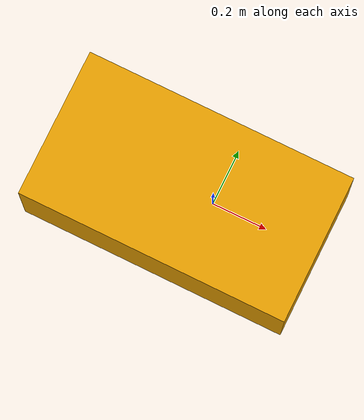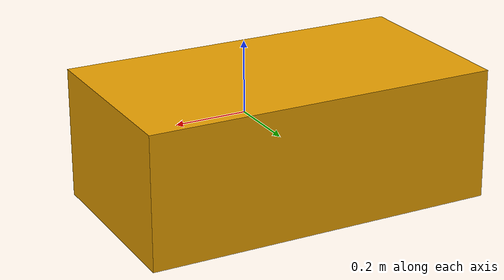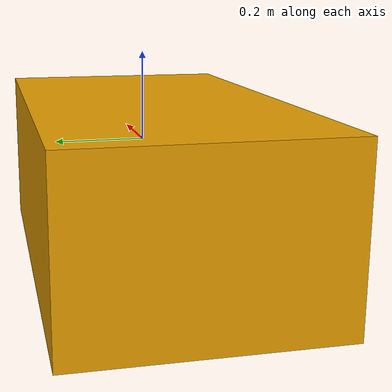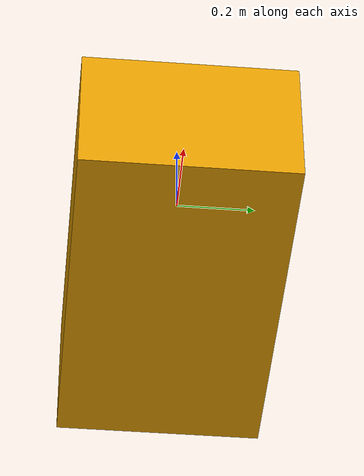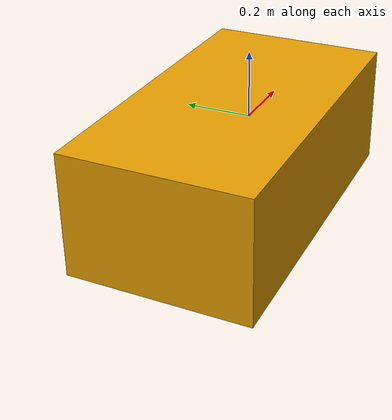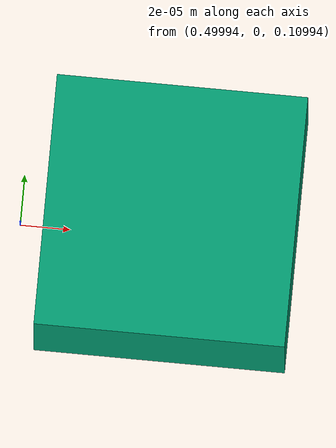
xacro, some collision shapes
<?xml version="1.0"?>
<robot name="kingfisher_sim" xmlns:xacro="http://www.ros.org/wiki/xacro">
    <xacro:arg name="namespace" default="ns" />
    <xacro:arg name="simulate_cameras" default="true" />

    <xacro:property name="ns" value="$(arg namespace)" />

    <xacro:include filename="$(find tauv_sim_gazebo_plugins)/urdf/utils.xacro"/>
    <xacro:include filename="$(find tauv_sim_gazebo_plugins)/urdf/thruster_plugin.xacro"/>
    <xacro:include filename="$(find tauv_sim_gazebo_plugins)/urdf/navigation_state_plugin.xacro"/>

    <link name="${ns}/base_link">
        <inertial>
            <mass value="28"/>
            <origin xyz="0 0 0" rpy="0 0 0"/>
            <inertia
                    ixx="7"
                    ixy="0"
                    ixz="0"
                    iyy="7"
                    iyz="0"
                    izz="4"
            />
        </inertial>

        <visual>
            <origin xyz="-0.1 0 0" rpy="0 0 3.141592"/>
            <geometry>
                <mesh filename="$(find kingfisher_sim_description)/meshes/KingfisherCoarseNoInsides.obj" scale="1 1 1" />
            </geometry>
        </visual>

        <collision>
            <origin xyz="-0.1 0 -0.08" rpy="0 0 0"/>
            <geometry>
                <box size="0.986 0.538 0.366"/>
            </geometry>
        </collision>
    </link>

    <gazebo reference="${ns}/base_link">
        <selfCollide>false</selfCollide>
    </gazebo>

    <gazebo>
        <plugin name="${ns}_uuv_plugin" filename="libuuv_underwater_object_ros_plugin.so">
            <fluid_density>1028.0</fluid_density>
            <flow_velocity_topic>hydrodynamics/current_velocity</flow_velocity_topic>
            <debug>true</debug>

            <link name="${ns}/base_link">
                <neutrally_buoyant>0</neutrally_buoyant>

                <volume>0.03</volume>

                <box>
                    <length>0.986</length>
                    <width>0.538</width>
                    <height>0.366</height>
                </box>

                <center_of_buoyancy>0.02 0 0.13</center_of_buoyancy>

                <hydrodynamic_model>
                    <type>fossen</type>

                    <added_mass>
                        0 0 0 0 0 0
                        0 0 0 0 0 0
                        0 0 0 0 0 0
                        0 0 0 0 0 0
                        0 0 0 0 0 0
                        0 0 0 0 0 0
                    </added_mass>

                    <linear_damping>
                        -62.3844 -83.1339 -44.2445 -7.69374 -5.65474 -3.10541
                    </linear_damping>

                    <quadratic_damping>
                        0 0 0 0 0 0
                    </quadratic_damping>
                </hydrodynamic_model>
            </link>
        </plugin>
    </gazebo>

    <xacro:include filename="$(find kingfisher_sim_description)/urdf/thrusters.xacro" />

    <xacro:if value="$(arg simulate_cameras)">
        <xacro:include filename="$(find kingfisher_sim_description)/urdf/cameras.xacro" />
    </xacro:if>

    <xacro:include filename="$(find kingfisher_sim_description)/urdf/sensors.xacro" />
</robot>

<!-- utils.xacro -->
<robot xmlns:xacro="http://www.ros.org/wiki/xacro">
    <xacro:macro name="no_inertial">
        <inertial>
            <mass value="0.0001"/>
            <origin xyz="0 0 0" rpy="0 0 0"/>
            <inertia ixx="0" ixy="0" ixz="0" iyy="0" iyz="0" izz="0"/>
        </inertial>
    </xacro:macro>

    <xacro:macro name="no_visual">
        <visual>
            <origin xyz="0 0 0" rpy="0 0 0"/>
            <geometry>
                <box size="0.0001 0.0001 0.0001"/>
            </geometry>
        </visual>
    </xacro:macro>

    <xacro:macro name="no_collision">
    <collision>
        <origin xyz="0 0 0" rpy="0 0 0"/>
        <geometry>
            <box size="0.0001 0.0001 0.0001"/>
        </geometry>
    </collision>
    </xacro:macro>
</robot>

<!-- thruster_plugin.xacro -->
<robot xmlns:xacro="http://www.ros.org/wiki/xacro">
   <xacro:macro name="t200_thruster"
      params="namespace
              thruster_id
              *origin">
      <joint name="${namespace}/thruster_${thruster_id}_joint" type="continuous">
         <xacro:insert_block name="origin"/>
         <axis xyz="1 0 0"/>
         <parent link="${namespace}/base_link"/>
         <child link="${namespace}/thruster_${thruster_id}"/>
      </joint>

      <link name="${namespace}/thruster_${thruster_id}">
         <xacro:no_inertial/>
         <xacro:no_visual/>
         <xacro:no_collision/>
      </link>

      <gazebo>
         <plugin name="${namespace}_thruster_${thruster_id}" filename="libtauv_thruster_plugin.so">
            <linkName>${namespace}/thruster_${thruster_id}</linkName>
            <timeConstant>0.001</timeConstant>
            <publishRate>50</publishRate>
            <nodeName>${namespace}_thruster_${thruster_id}_plugin</nodeName>
            <targetThrustTopic>/${namespace}/vehicle/thrusters/${thruster_id}/target_thrust</targetThrustTopic>
            <thrustTopic>/${namespace}/vehicle/thrusters/${thruster_id}/thrust</thrustTopic>
            <maxThrust>50</maxThrust>
            <minThrust>-40</minThrust>
         </plugin>
      </gazebo>

      <gazebo reference="${namespace}/thruster_${thruster_id}">
         <selfCollide>false</selfCollide>
      </gazebo>
   </xacro:macro>
</robot>

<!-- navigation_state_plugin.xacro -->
<robot xmlns:xacro="http://www.ros.org/wiki/xacro">
    <xacro:macro name="navigation_state_sensor"
        params="namespace *origin">
        <joint name="${namespace}/navigation_state_sensor_joint" type="revolute">
            <xacro:insert_block name="origin"/>
            <parent link="${namespace}/base_link"/>
            <child link="${namespace}/navigation_state_sensor"/>
            <limit upper="0" lower="0" effort="0" velocity="0"/>
            <axis xyz="1 0 0"/>
        </joint>

        <link name="${namespace}/navigation_state_sensor">
            <xacro:no_inertial/>
            <xacro:no_visual/>
            <xacro:no_collision/>
        </link>

        <gazebo>
            <plugin name="${namespace}_navigation_state_sensor" filename="libtauv_navigation_state_plugin.so">
                <linkName>${namespace}/navigation_state_sensor</linkName>
                <publishRate>50</publishRate>
                <nodeName>${namespace}_navigation_state_plugin</nodeName>
                <navigationStateTopic>/${namespace}/gnc/navigation_state</navigationStateTopic>
                <odomTopic>/${namespace}/gnc/odom</odomTopic>
                <tfNamespace>${namespace}</tfNamespace>
            </plugin>
        </gazebo>

        <gazebo reference="${namespace}/navigation_state_sensor">
            <selfCollide>false</selfCollide>
        </gazebo>
    </xacro:macro>
</robot>

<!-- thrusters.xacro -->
<robot xmlns:xacro="http://www.ros.org/wiki/xacro">
    <!--front right-->
    <xacro:t200_thruster namespace="${ns}" thruster_id="0">
        <origin xyz="0.43852 -0.22093 0" rpy="1.5707963267949 0 0.785398163397449"/>
    </xacro:t200_thruster>

    <!--front left-->
    <xacro:t200_thruster namespace="${ns}" thruster_id="1">
        <origin xyz="0.43852 0.22093 0" rpy="1.5707963267949 0 -0.785398163397459"/>
    </xacro:t200_thruster>

    <!--back right-->
    <xacro:t200_thruster namespace="${ns}" thruster_id="2">
        <origin xyz="-0.43852 -0.22093 0" rpy="-1.5707963267949 0 2.35619449019234"/>
    </xacro:t200_thruster>

    <!--back left-->
    <xacro:t200_thruster namespace="${ns}" thruster_id="3">
        <origin xyz="-0.43852 0.22093 0" rpy="-1.57079632679489 0 -2.35619449019233"/>
    </xacro:t200_thruster>

    <!--front right vertical-->
    <xacro:t200_thruster namespace="${ns}" thruster_id="4">
        <origin xyz="0.23876 -0.213083 -0.01115" rpy="1.5707963267949 1.5707963267949 0"/>
    </xacro:t200_thruster>

    <!--front left vertical-->
    <xacro:t200_thruster namespace="${ns}" thruster_id="5">
        <origin xyz="0.23876 0.21308 -0.01115" rpy="1.5707963267949 1.5707963267949 0"/>
    </xacro:t200_thruster>

    <!--back right vertical-->
    <xacro:t200_thruster namespace="${ns}" thruster_id="6">
        <origin xyz="-0.23876 -0.213083 -0.01115" rpy="1.5707963267949 1.5707963267949 0"/>
    </xacro:t200_thruster>

    <!--back left vertical-->
    <xacro:t200_thruster namespace="${ns}" thruster_id="7">
        <origin xyz="-0.23876 0.21308 -0.01115" rpy="1.5707963267949 1.5707963267949 0"/>
    </xacro:t200_thruster>
</robot>

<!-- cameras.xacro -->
<robot xmlns:xacro="http://www.ros.org/wiki/xacro">
<!--    Needs sudo apt-get install ros-noetic-gazebo-ros-pkgs ros-noetic-gazebo-ros-control-->

    <xacro:property name="oakd_color_k1" value="0"/>
    <xacro:property name="oakd_color_k2" value="0"/>
    <xacro:property name="oakd_color_k3" value="0"/>
    <xacro:property name="oakd_color_p1" value="0"/>
    <xacro:property name="oakd_color_p2" value="0"/>
    <xacro:property name="oakd_color_hfov" value="1.1071"/>
    <xacro:property name="oakd_color_width" value="1280"/>
    <xacro:property name="oakd_color_height" value="720"/>

    <xacro:property name="oakd_stereo_k1" value="0"/>
    <xacro:property name="oakd_stereo_k2" value="0"/>
    <xacro:property name="oakd_stereo_k3" value="0"/>
    <xacro:property name="oakd_stereo_p1" value="0"/>
    <xacro:property name="oakd_stereo_p2" value="0"/>
    <xacro:property name="oakd_stereo_hfov" value="1.1071"/>
    <xacro:property name="oakd_stereo_width" value="1280"/>
    <xacro:property name="oakd_stereo_height" value="720"/>
    <xacro:property name="oakd_stereo_baseline" value="0.07"/>

    <link name="${ns}/front_oakd_link">
        <xacro:no_inertial/>
        <xacro:no_visual/>
        <xacro:no_collision/>
    </link>

    <link name="${ns}/bottom_oakd_link">
        <xacro:no_inertial/>
        <xacro:no_visual/>
        <xacro:no_collision/>
    </link>

    <joint name="${ns}/front_oakd_joint" type="revolute">
        <origin xyz="0.5 0 0.0508" rpy="0 0 0"/>
        <parent link="${ns}/base_link"/>
        <child link="${ns}/front_oakd_link"/>
        <limit upper="0" lower="0" effort="0" velocity="0"/>
        <axis xyz="1 0 0"/>
    </joint>

    <joint name="${ns}/bottom_oakd_joint" type="revolute">
        <origin xyz="0.5 0 0.11" rpy="1.57 1.57 0"/>
        <parent link="${ns}/base_link"/>
        <child link="${ns}/bottom_oakd_link"/>
        <limit upper="0" lower="0" effort="0" velocity="0"/>
        <axis xyz="1 0 0"/>
    </joint>

    <gazebo reference="${ns}/front_oakd_link">
        <sensor name="oakd_front" type="depth">
            <update_rate>0.5</update_rate>
            <camera>
          <horizontal_fov>${oakd_color_hfov}</horizontal_fov>
              <image>
                <width>640</width>
                <height>360</height>
                <format>R8G8B8</format>
              </image>
              <clip>
                <near>0.05</near>
                <far>300</far>
              </clip>
                <visualize>true</visualize>
            </camera>

            <plugin name="camera_plugin" filename="libgazebo_ros_openni_kinect.so">
              <baseline>0.2</baseline>
              <alwaysOn>true</alwaysOn>
              <updateRate>0.0</updateRate>
              <cameraName>oakd_front</cameraName>
              <imageTopicName>/kf/vehicle/oakd_front/color/image_raw</imageTopicName>
              <cameraInfoTopicName>/kf/vehicle/oakd_front/color/camera_info</cameraInfoTopicName>
              <depthImageTopicName>/kf/vehicle/oakd_front/depth/image_very_raw</depthImageTopicName>
              <depthImageCameraInfoTopicName>/kf/vehicle/oakd_front/depth/camera_info</depthImageCameraInfoTopicName>
              <pointCloudTopicName>/kf/vehicle/oakd_front/depth/points</pointCloudTopicName>
              <pointCloudCutoff>0.05</pointCloudCutoff>
              <pointCloudCutoffMax>3.5</pointCloudCutoffMax>
              <frameName>${ns}/front_oakd_link</frameName>
              <distortionK1>0</distortionK1>
              <distortionK2>0</distortionK2>
              <distortionK3>0</distortionK3>
              <distortionT1>0</distortionT1>
              <distortionT2>0</distortionT2>
              <CxPrime>0</CxPrime>
              <Cx>0</Cx>
              <Cy>0</Cy>
              <focalLength>0</focalLength>
              <hackBaseline>0</hackBaseline>
            </plugin>

        </sensor>
    </gazebo>

    <gazebo reference="${ns}/bottom_oakd_link">
        <sensor name="oakd_bottom" type="depth">
            <update_rate>0.5</update_rate>
            <camera>
            <horizontal_fov>${oakd_color_hfov}</horizontal_fov>
              <image>
                <width>640</width>
                <height>360</height>
                <format>R8G8B8</format>
              </image>
              <clip>
                <near>0.05</near>
                <far>300</far>
              </clip>
                <visualize>true</visualize>
            </camera>

            <plugin name="camera_plugin" filename="libgazebo_ros_openni_kinect.so">
              <baseline>0.2</baseline>
              <alwaysOn>true</alwaysOn>
              <updateRate>0.0</updateRate>
              <cameraName>oakd_bottom</cameraName>
              <imageTopicName>/kf/vehicle/oakd_bottom/color/image_raw</imageTopicName>
              <cameraInfoTopicName>/kf/vehicle/oakd_bottom/color/camera_info</cameraInfoTopicName>
              <depthImageTopicName>/kf/vehicle/oakd_bottom/depth/image_very_raw</depthImageTopicName>
              <depthImageCameraInfoTopicName>/kf/vehicle/oakd_bottom/depth/camera_info</depthImageCameraInfoTopicName>
              <pointCloudTopicName>/kf/vehicle/oakd_bottom/depth/points</pointCloudTopicName>
              <pointCloudCutoff>0.05</pointCloudCutoff>
              <pointCloudCutoffMax>3.5</pointCloudCutoffMax>
              <frameName>${ns}/front_oakd_link</frameName>
              <distortionK1>0</distortionK1>
              <distortionK2>0</distortionK2>
              <distortionK3>0</distortionK3>
              <distortionT1>0</distortionT1>
              <distortionT2>0</distortionT2>
              <CxPrime>0</CxPrime>
              <Cx>0</Cx>
              <Cy>0</Cy>
              <focalLength>0</focalLength>
              <hackBaseline>0</hackBaseline>
            </plugin>

        </sensor>
    </gazebo>
</robot>

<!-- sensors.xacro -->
<robot xmlns:xacro="http://www.ros.org/wiki/xacro">
    <xacro:navigation_state_sensor namespace="${ns}">
        <origin xyz="0 0 0" rpy="0 0 0"/>
    </xacro:navigation_state_sensor>
</robot>
